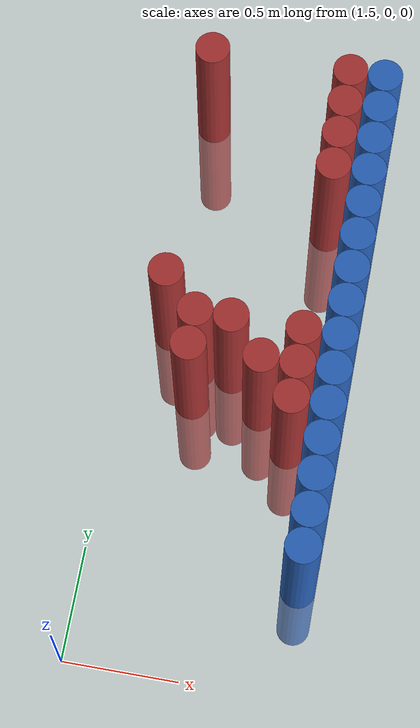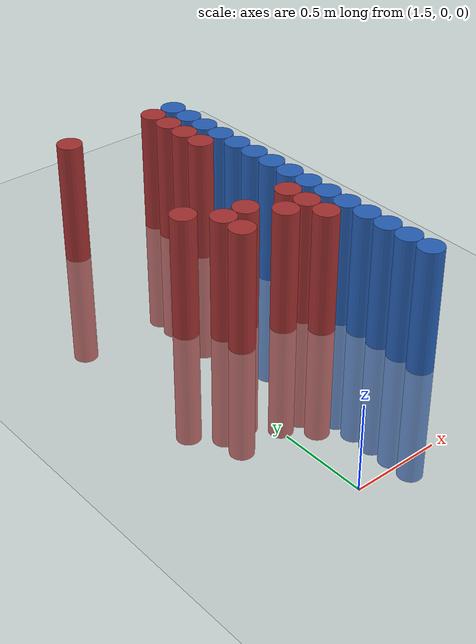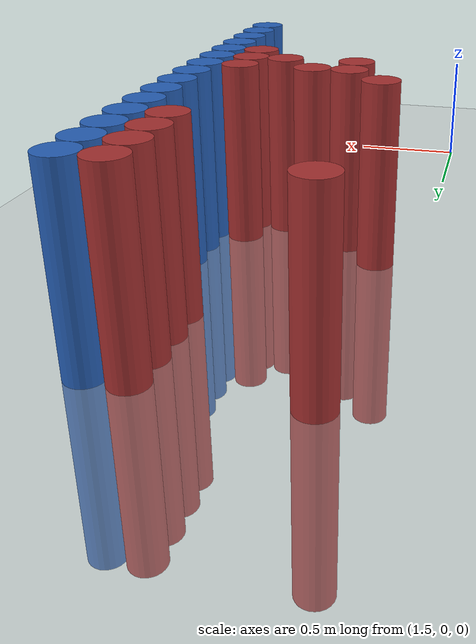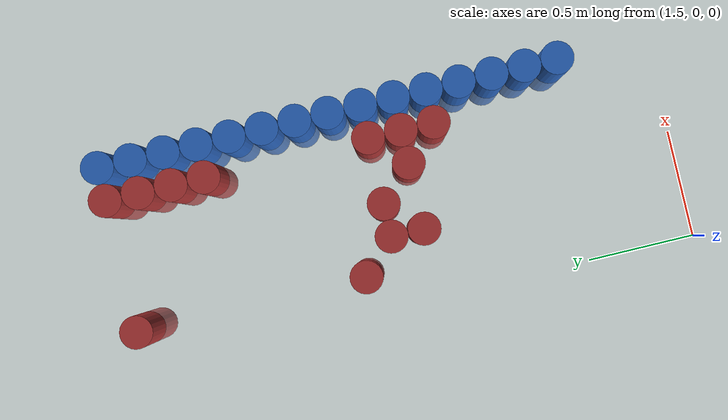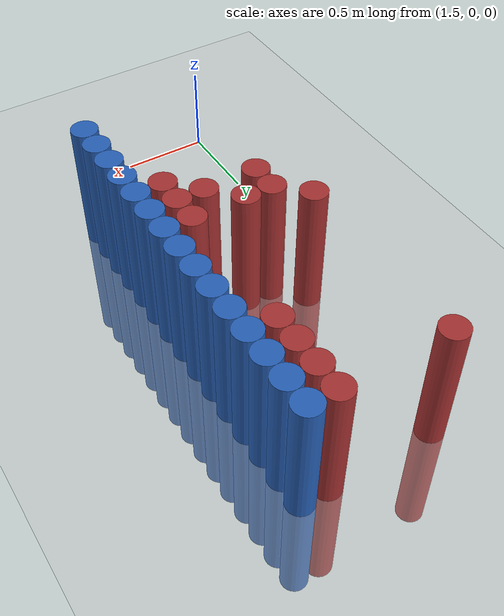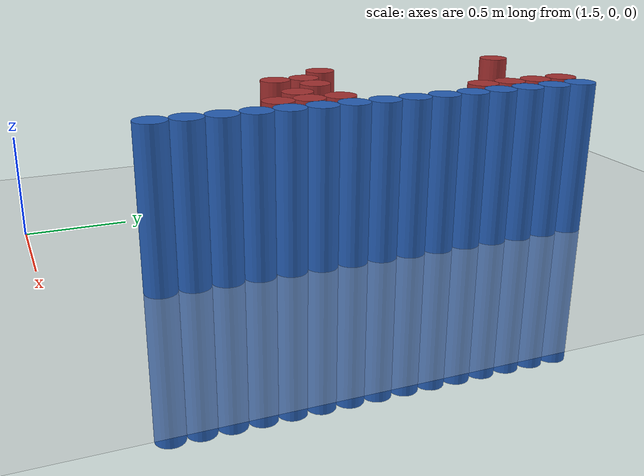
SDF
<sdf version="1.6">
 <world name="default">
  <model name="ground_plane">
   <static>1</static>
   <link name="link">
    <collision name="collision">
     <geometry><plane><normal>0 0 1</normal><size>100 100</size></plane></geometry>
     <surface><friction><ode><mu>100</mu><mu2>50</mu2></ode></friction></surface>
    </collision>
    <visual name="visual">
     <cast_shadows>0</cast_shadows>
     <geometry><plane><normal>0 0 1</normal><size>100 100</size></plane></geometry>
     <material>
      <script><uri>file://media/materials/scripts/gazebo.material</uri><name>Gazebo/Grey</name></script>
     </material>
    </visual>
   </link>
  </model>
  <model name="unit_cylinder_217">
   <static>1</static>
   <pose>1.675000 1.525000 0.000000 0.000000 0.000000 0.000000</pose>
   <link name="link">
    <inertial>
     <mass>1</mass>
     <inertia><ixx>0.145833</ixx><ixy>0</ixy><ixz>0</ixz><iyy>0.145833</iyy><iyz>0</iyz><izz>0.125</izz></inertia>
    </inertial>
    <collision name="collision">
     <geometry><cylinder><radius>0.075000</radius><length>1.5</length></cylinder></geometry>
    </collision>
    <visual name="visual">
     <geometry><cylinder><radius>0.075000</radius><length>1.5</length></cylinder></geometry>
     <material>
      <ambient>0.648000 0.192000 0.192000 1</ambient>
      <diffuse>0.648000 0.192000 0.192000 1</diffuse>
     </material>
     <material>
      <script><name>Gazebo/Grey</name><uri>file://media/materials/scripts/gazebo.material</uri></script>
     </material>
    </visual>
   </link>
  </model>
  <model name="unit_cylinder_218">
   <static>1</static>
   <pose>1.675000 2.575000 0.000000 0.000000 0.000000 0.000000</pose>
   <link name="link">
    <inertial>
     <mass>1</mass>
     <inertia><ixx>0.145833</ixx><ixy>0</ixy><ixz>0</ixz><iyy>0.145833</iyy><iyz>0</iyz><izz>0.125</izz></inertia>
    </inertial>
    <collision name="collision">
     <geometry><cylinder><radius>0.075000</radius><length>1.5</length></cylinder></geometry>
    </collision>
    <visual name="visual">
     <geometry><cylinder><radius>0.075000</radius><length>1.5</length></cylinder></geometry>
     <material>
      <ambient>0.648000 0.192000 0.192000 1</ambient>
      <diffuse>0.648000 0.192000 0.192000 1</diffuse>
     </material>
     <material>
      <script><name>Gazebo/Grey</name><uri>file://media/materials/scripts/gazebo.material</uri></script>
     </material>
    </visual>
   </link>
  </model>
  <model name="unit_cylinder_219">
   <static>1</static>
   <pose>1.825000 1.225000 0.000000 0.000000 0.000000 0.000000</pose>
   <link name="link">
    <inertial>
     <mass>1</mass>
     <inertia><ixx>0.145833</ixx><ixy>0</ixy><ixz>0</ixz><iyy>0.145833</iyy><iyz>0</iyz><izz>0.125</izz></inertia>
    </inertial>
    <collision name="collision">
     <geometry><cylinder><radius>0.075000</radius><length>1.5</length></cylinder></geometry>
    </collision>
    <visual name="visual">
     <geometry><cylinder><radius>0.075000</radius><length>1.5</length></cylinder></geometry>
     <material>
      <ambient>0.648000 0.192000 0.192000 1</ambient>
      <diffuse>0.648000 0.192000 0.192000 1</diffuse>
     </material>
     <material>
      <script><name>Gazebo/Grey</name><uri>file://media/materials/scripts/gazebo.material</uri></script>
     </material>
    </visual>
   </link>
  </model>
  <model name="unit_cylinder_220">
   <static>1</static>
   <pose>1.825000 1.375000 0.000000 0.000000 0.000000 0.000000</pose>
   <link name="link">
    <inertial>
     <mass>1</mass>
     <inertia><ixx>0.145833</ixx><ixy>0</ixy><ixz>0</ixz><iyy>0.145833</iyy><iyz>0</iyz><izz>0.125</izz></inertia>
    </inertial>
    <collision name="collision">
     <geometry><cylinder><radius>0.075000</radius><length>1.5</length></cylinder></geometry>
    </collision>
    <visual name="visual">
     <geometry><cylinder><radius>0.075000</radius><length>1.5</length></cylinder></geometry>
     <material>
      <ambient>0.648000 0.192000 0.192000 1</ambient>
      <diffuse>0.648000 0.192000 0.192000 1</diffuse>
     </material>
     <material>
      <script><name>Gazebo/Grey</name><uri>file://media/materials/scripts/gazebo.material</uri></script>
     </material>
    </visual>
   </link>
  </model>
  <model name="unit_cylinder_221">
   <static>1</static>
   <pose>1.975000 1.375000 0.000000 0.000000 0.000000 0.000000</pose>
   <link name="link">
    <inertial>
     <mass>1</mass>
     <inertia><ixx>0.145833</ixx><ixy>0</ixy><ixz>0</ixz><iyy>0.145833</iyy><iyz>0</iyz><izz>0.125</izz></inertia>
    </inertial>
    <collision name="collision">
     <geometry><cylinder><radius>0.075000</radius><length>1.5</length></cylinder></geometry>
    </collision>
    <visual name="visual">
     <geometry><cylinder><radius>0.075000</radius><length>1.5</length></cylinder></geometry>
     <material>
      <ambient>0.648000 0.192000 0.192000 1</ambient>
      <diffuse>0.648000 0.192000 0.192000 1</diffuse>
     </material>
     <material>
      <script><name>Gazebo/Grey</name><uri>file://media/materials/scripts/gazebo.material</uri></script>
     </material>
    </visual>
   </link>
  </model>
  <model name="unit_cylinder_224">
   <static>1</static>
   <pose>2.125000 1.225000 0.000000 0.000000 0.000000 0.000000</pose>
   <link name="link">
    <inertial>
     <mass>1</mass>
     <inertia><ixx>0.145833</ixx><ixy>0</ixy><ixz>0</ixz><iyy>0.145833</iyy><iyz>0</iyz><izz>0.125</izz></inertia>
    </inertial>
    <collision name="collision">
     <geometry><cylinder><radius>0.075000</radius><length>1.5</length></cylinder></geometry>
    </collision>
    <visual name="visual">
     <geometry><cylinder><radius>0.075000</radius><length>1.5</length></cylinder></geometry>
     <material>
      <ambient>0.648000 0.192000 0.192000 1</ambient>
      <diffuse>0.648000 0.192000 0.192000 1</diffuse>
     </material>
     <material>
      <script><name>Gazebo/Grey</name><uri>file://media/materials/scripts/gazebo.material</uri></script>
     </material>
    </visual>
   </link>
  </model>
  <model name="unit_cylinder_228">
   <static>1</static>
   <pose>2.275000 1.075000 0.000000 0.000000 0.000000 0.000000</pose>
   <link name="link">
    <inertial>
     <mass>1</mass>
     <inertia><ixx>0.145833</ixx><ixy>0</ixy><ixz>0</ixz><iyy>0.145833</iyy><iyz>0</iyz><izz>0.125</izz></inertia>
    </inertial>
    <collision name="collision">
     <geometry><cylinder><radius>0.075000</radius><length>1.5</length></cylinder></geometry>
    </collision>
    <visual name="visual">
     <geometry><cylinder><radius>0.075000</radius><length>1.5</length></cylinder></geometry>
     <material>
      <ambient>0.648000 0.192000 0.192000 1</ambient>
      <diffuse>0.648000 0.192000 0.192000 1</diffuse>
     </material>
     <material>
      <script><name>Gazebo/Grey</name><uri>file://media/materials/scripts/gazebo.material</uri></script>
     </material>
    </visual>
   </link>
  </model>
  <model name="unit_cylinder_229">
   <static>1</static>
   <pose>2.275000 1.225000 0.000000 0.000000 0.000000 0.000000</pose>
   <link name="link">
    <inertial>
     <mass>1</mass>
     <inertia><ixx>0.145833</ixx><ixy>0</ixy><ixz>0</ixz><iyy>0.145833</iyy><iyz>0</iyz><izz>0.125</izz></inertia>
    </inertial>
    <collision name="collision">
     <geometry><cylinder><radius>0.075000</radius><length>1.5</length></cylinder></geometry>
    </collision>
    <visual name="visual">
     <geometry><cylinder><radius>0.075000</radius><length>1.5</length></cylinder></geometry>
     <material>
      <ambient>0.648000 0.192000 0.192000 1</ambient>
      <diffuse>0.648000 0.192000 0.192000 1</diffuse>
     </material>
     <material>
      <script><name>Gazebo/Grey</name><uri>file://media/materials/scripts/gazebo.material</uri></script>
     </material>
    </visual>
   </link>
  </model>
  <model name="unit_cylinder_230">
   <static>1</static>
   <pose>2.275000 1.375000 0.000000 0.000000 0.000000 0.000000</pose>
   <link name="link">
    <inertial>
     <mass>1</mass>
     <inertia><ixx>0.145833</ixx><ixy>0</ixy><ixz>0</ixz><iyy>0.145833</iyy><iyz>0</iyz><izz>0.125</izz></inertia>
    </inertial>
    <collision name="collision">
     <geometry><cylinder><radius>0.075000</radius><length>1.5</length></cylinder></geometry>
    </collision>
    <visual name="visual">
     <geometry><cylinder><radius>0.075000</radius><length>1.5</length></cylinder></geometry>
     <material>
      <ambient>0.648000 0.192000 0.192000 1</ambient>
      <diffuse>0.648000 0.192000 0.192000 1</diffuse>
     </material>
     <material>
      <script><name>Gazebo/Grey</name><uri>file://media/materials/scripts/gazebo.material</uri></script>
     </material>
    </visual>
   </link>
  </model>
  <model name="unit_cylinder_231">
   <static>1</static>
   <pose>2.275000 2.125000 0.000000 0.000000 0.000000 0.000000</pose>
   <link name="link">
    <inertial>
     <mass>1</mass>
     <inertia><ixx>0.145833</ixx><ixy>0</ixy><ixz>0</ixz><iyy>0.145833</iyy><iyz>0</iyz><izz>0.125</izz></inertia>
    </inertial>
    <collision name="collision">
     <geometry><cylinder><radius>0.075000</radius><length>1.5</length></cylinder></geometry>
    </collision>
    <visual name="visual">
     <geometry><cylinder><radius>0.075000</radius><length>1.5</length></cylinder></geometry>
     <material>
      <ambient>0.648000 0.192000 0.192000 1</ambient>
      <diffuse>0.648000 0.192000 0.192000 1</diffuse>
     </material>
     <material>
      <script><name>Gazebo/Grey</name><uri>file://media/materials/scripts/gazebo.material</uri></script>
     </material>
    </visual>
   </link>
  </model>
  <model name="unit_cylinder_232">
   <static>1</static>
   <pose>2.275000 2.275000 0.000000 0.000000 0.000000 0.000000</pose>
   <link name="link">
    <inertial>
     <mass>1</mass>
     <inertia><ixx>0.145833</ixx><ixy>0</ixy><ixz>0</ixz><iyy>0.145833</iyy><iyz>0</iyz><izz>0.125</izz></inertia>
    </inertial>
    <collision name="collision">
     <geometry><cylinder><radius>0.075000</radius><length>1.5</length></cylinder></geometry>
    </collision>
    <visual name="visual">
     <geometry><cylinder><radius>0.075000</radius><length>1.5</length></cylinder></geometry>
     <material>
      <ambient>0.648000 0.192000 0.192000 1</ambient>
      <diffuse>0.648000 0.192000 0.192000 1</diffuse>
     </material>
     <material>
      <script><name>Gazebo/Grey</name><uri>file://media/materials/scripts/gazebo.material</uri></script>
     </material>
    </visual>
   </link>
  </model>
  <model name="unit_cylinder_233">
   <static>1</static>
   <pose>2.275000 2.425000 0.000000 0.000000 0.000000 0.000000</pose>
   <link name="link">
    <inertial>
     <mass>1</mass>
     <inertia><ixx>0.145833</ixx><ixy>0</ixy><ixz>0</ixz><iyy>0.145833</iyy><iyz>0</iyz><izz>0.125</izz></inertia>
    </inertial>
    <collision name="collision">
     <geometry><cylinder><radius>0.075000</radius><length>1.5</length></cylinder></geometry>
    </collision>
    <visual name="visual">
     <geometry><cylinder><radius>0.075000</radius><length>1.5</length></cylinder></geometry>
     <material>
      <ambient>0.648000 0.192000 0.192000 1</ambient>
      <diffuse>0.648000 0.192000 0.192000 1</diffuse>
     </material>
     <material>
      <script><name>Gazebo/Grey</name><uri>file://media/materials/scripts/gazebo.material</uri></script>
     </material>
    </visual>
   </link>
  </model>
  <model name="unit_cylinder_234">
   <static>1</static>
   <pose>2.275000 2.575000 0.000000 0.000000 0.000000 0.000000</pose>
   <link name="link">
    <inertial>
     <mass>1</mass>
     <inertia><ixx>0.145833</ixx><ixy>0</ixy><ixz>0</ixz><iyy>0.145833</iyy><iyz>0</iyz><izz>0.125</izz></inertia>
    </inertial>
    <collision name="collision">
     <geometry><cylinder><radius>0.075000</radius><length>1.5</length></cylinder></geometry>
    </collision>
    <visual name="visual">
     <geometry><cylinder><radius>0.075000</radius><length>1.5</length></cylinder></geometry>
     <material>
      <ambient>0.648000 0.192000 0.192000 1</ambient>
      <diffuse>0.648000 0.192000 0.192000 1</diffuse>
     </material>
     <material>
      <script><name>Gazebo/Grey</name><uri>file://media/materials/scripts/gazebo.material</uri></script>
     </material>
    </visual>
   </link>
  </model>
  <model name="unit_cylinder_244">
   <static>1</static>
   <pose>2.425000 0.475000 0.000000 0.000000 0.000000 0.000000</pose>
   <link name="link">
    <inertial>
     <mass>1</mass>
     <inertia><ixx>0.145833</ixx><ixy>0</ixy><ixz>0</ixz><iyy>0.145833</iyy><iyz>0</iyz><izz>0.125</izz></inertia>
    </inertial>
    <collision name="collision">
     <geometry><cylinder><radius>0.075000</radius><length>1.5</length></cylinder></geometry>
    </collision>
    <visual name="visual">
     <geometry><cylinder><radius>0.075000</radius><length>1.5</length></cylinder></geometry>
     <material>
      <ambient>0.152000 0.379000 0.720000 1</ambient>
      <diffuse>0.152000 0.379000 0.720000 1</diffuse>
     </material>
     <material>
      <script><name>Gazebo/Grey</name><uri>file://media/materials/scripts/gazebo.material</uri></script>
     </material>
    </visual>
   </link>
  </model>
  <model name="unit_cylinder_245">
   <static>1</static>
   <pose>2.425000 0.625000 0.000000 0.000000 0.000000 0.000000</pose>
   <link name="link">
    <inertial>
     <mass>1</mass>
     <inertia><ixx>0.145833</ixx><ixy>0</ixy><ixz>0</ixz><iyy>0.145833</iyy><iyz>0</iyz><izz>0.125</izz></inertia>
    </inertial>
    <collision name="collision">
     <geometry><cylinder><radius>0.075000</radius><length>1.5</length></cylinder></geometry>
    </collision>
    <visual name="visual">
     <geometry><cylinder><radius>0.075000</radius><length>1.5</length></cylinder></geometry>
     <material>
      <ambient>0.152000 0.379000 0.720000 1</ambient>
      <diffuse>0.152000 0.379000 0.720000 1</diffuse>
     </material>
     <material>
      <script><name>Gazebo/Grey</name><uri>file://media/materials/scripts/gazebo.material</uri></script>
     </material>
    </visual>
   </link>
  </model>
  <model name="unit_cylinder_246">
   <static>1</static>
   <pose>2.425000 0.775000 0.000000 0.000000 0.000000 0.000000</pose>
   <link name="link">
    <inertial>
     <mass>1</mass>
     <inertia><ixx>0.145833</ixx><ixy>0</ixy><ixz>0</ixz><iyy>0.145833</iyy><iyz>0</iyz><izz>0.125</izz></inertia>
    </inertial>
    <collision name="collision">
     <geometry><cylinder><radius>0.075000</radius><length>1.5</length></cylinder></geometry>
    </collision>
    <visual name="visual">
     <geometry><cylinder><radius>0.075000</radius><length>1.5</length></cylinder></geometry>
     <material>
      <ambient>0.152000 0.379000 0.720000 1</ambient>
      <diffuse>0.152000 0.379000 0.720000 1</diffuse>
     </material>
     <material>
      <script><name>Gazebo/Grey</name><uri>file://media/materials/scripts/gazebo.material</uri></script>
     </material>
    </visual>
   </link>
  </model>
  <model name="unit_cylinder_247">
   <static>1</static>
   <pose>2.425000 0.925000 0.000000 0.000000 0.000000 0.000000</pose>
   <link name="link">
    <inertial>
     <mass>1</mass>
     <inertia><ixx>0.145833</ixx><ixy>0</ixy><ixz>0</ixz><iyy>0.145833</iyy><iyz>0</iyz><izz>0.125</izz></inertia>
    </inertial>
    <collision name="collision">
     <geometry><cylinder><radius>0.075000</radius><length>1.5</length></cylinder></geometry>
    </collision>
    <visual name="visual">
     <geometry><cylinder><radius>0.075000</radius><length>1.5</length></cylinder></geometry>
     <material>
      <ambient>0.152000 0.379000 0.720000 1</ambient>
      <diffuse>0.152000 0.379000 0.720000 1</diffuse>
     </material>
     <material>
      <script><name>Gazebo/Grey</name><uri>file://media/materials/scripts/gazebo.material</uri></script>
     </material>
    </visual>
   </link>
  </model>
  <model name="unit_cylinder_248">
   <static>1</static>
   <pose>2.425000 1.075000 0.000000 0.000000 0.000000 0.000000</pose>
   <link name="link">
    <inertial>
     <mass>1</mass>
     <inertia><ixx>0.145833</ixx><ixy>0</ixy><ixz>0</ixz><iyy>0.145833</iyy><iyz>0</iyz><izz>0.125</izz></inertia>
    </inertial>
    <collision name="collision">
     <geometry><cylinder><radius>0.075000</radius><length>1.5</length></cylinder></geometry>
    </collision>
    <visual name="visual">
     <geometry><cylinder><radius>0.075000</radius><length>1.5</length></cylinder></geometry>
     <material>
      <ambient>0.152000 0.379000 0.720000 1</ambient>
      <diffuse>0.152000 0.379000 0.720000 1</diffuse>
     </material>
     <material>
      <script><name>Gazebo/Grey</name><uri>file://media/materials/scripts/gazebo.material</uri></script>
     </material>
    </visual>
   </link>
  </model>
  <model name="unit_cylinder_249">
   <static>1</static>
   <pose>2.425000 1.225000 0.000000 0.000000 0.000000 0.000000</pose>
   <link name="link">
    <inertial>
     <mass>1</mass>
     <inertia><ixx>0.145833</ixx><ixy>0</ixy><ixz>0</ixz><iyy>0.145833</iyy><iyz>0</iyz><izz>0.125</izz></inertia>
    </inertial>
    <collision name="collision">
     <geometry><cylinder><radius>0.075000</radius><length>1.5</length></cylinder></geometry>
    </collision>
    <visual name="visual">
     <geometry><cylinder><radius>0.075000</radius><length>1.5</length></cylinder></geometry>
     <material>
      <ambient>0.152000 0.379000 0.720000 1</ambient>
      <diffuse>0.152000 0.379000 0.720000 1</diffuse>
     </material>
     <material>
      <script><name>Gazebo/Grey</name><uri>file://media/materials/scripts/gazebo.material</uri></script>
     </material>
    </visual>
   </link>
  </model>
  <model name="unit_cylinder_250">
   <static>1</static>
   <pose>2.425000 1.375000 0.000000 0.000000 0.000000 0.000000</pose>
   <link name="link">
    <inertial>
     <mass>1</mass>
     <inertia><ixx>0.145833</ixx><ixy>0</ixy><ixz>0</ixz><iyy>0.145833</iyy><iyz>0</iyz><izz>0.125</izz></inertia>
    </inertial>
    <collision name="collision">
     <geometry><cylinder><radius>0.075000</radius><length>1.5</length></cylinder></geometry>
    </collision>
    <visual name="visual">
     <geometry><cylinder><radius>0.075000</radius><length>1.5</length></cylinder></geometry>
     <material>
      <ambient>0.152000 0.379000 0.720000 1</ambient>
      <diffuse>0.152000 0.379000 0.720000 1</diffuse>
     </material>
     <material>
      <script><name>Gazebo/Grey</name><uri>file://media/materials/scripts/gazebo.material</uri></script>
     </material>
    </visual>
   </link>
  </model>
  <model name="unit_cylinder_251">
   <static>1</static>
   <pose>2.425000 1.525000 0.000000 0.000000 0.000000 0.000000</pose>
   <link name="link">
    <inertial>
     <mass>1</mass>
     <inertia><ixx>0.145833</ixx><ixy>0</ixy><ixz>0</ixz><iyy>0.145833</iyy><iyz>0</iyz><izz>0.125</izz></inertia>
    </inertial>
    <collision name="collision">
     <geometry><cylinder><radius>0.075000</radius><length>1.5</length></cylinder></geometry>
    </collision>
    <visual name="visual">
     <geometry><cylinder><radius>0.075000</radius><length>1.5</length></cylinder></geometry>
     <material>
      <ambient>0.152000 0.379000 0.720000 1</ambient>
      <diffuse>0.152000 0.379000 0.720000 1</diffuse>
     </material>
     <material>
      <script><name>Gazebo/Grey</name><uri>file://media/materials/scripts/gazebo.material</uri></script>
     </material>
    </visual>
   </link>
  </model>
  <model name="unit_cylinder_252">
   <static>1</static>
   <pose>2.425000 1.675000 0.000000 0.000000 0.000000 0.000000</pose>
   <link name="link">
    <inertial>
     <mass>1</mass>
     <inertia><ixx>0.145833</ixx><ixy>0</ixy><ixz>0</ixz><iyy>0.145833</iyy><iyz>0</iyz><izz>0.125</izz></inertia>
    </inertial>
    <collision name="collision">
     <geometry><cylinder><radius>0.075000</radius><length>1.5</length></cylinder></geometry>
    </collision>
    <visual name="visual">
     <geometry><cylinder><radius>0.075000</radius><length>1.5</length></cylinder></geometry>
     <material>
      <ambient>0.152000 0.379000 0.720000 1</ambient>
      <diffuse>0.152000 0.379000 0.720000 1</diffuse>
     </material>
     <material>
      <script><name>Gazebo/Grey</name><uri>file://media/materials/scripts/gazebo.material</uri></script>
     </material>
    </visual>
   </link>
  </model>
  <model name="unit_cylinder_253">
   <static>1</static>
   <pose>2.425000 1.825000 0.000000 0.000000 0.000000 0.000000</pose>
   <link name="link">
    <inertial>
     <mass>1</mass>
     <inertia><ixx>0.145833</ixx><ixy>0</ixy><ixz>0</ixz><iyy>0.145833</iyy><iyz>0</iyz><izz>0.125</izz></inertia>
    </inertial>
    <collision name="collision">
     <geometry><cylinder><radius>0.075000</radius><length>1.5</length></cylinder></geometry>
    </collision>
    <visual name="visual">
     <geometry><cylinder><radius>0.075000</radius><length>1.5</length></cylinder></geometry>
     <material>
      <ambient>0.152000 0.379000 0.720000 1</ambient>
      <diffuse>0.152000 0.379000 0.720000 1</diffuse>
     </material>
     <material>
      <script><name>Gazebo/Grey</name><uri>file://media/materials/scripts/gazebo.material</uri></script>
     </material>
    </visual>
   </link>
  </model>
  <model name="unit_cylinder_254">
   <static>1</static>
   <pose>2.425000 1.975000 0.000000 0.000000 0.000000 0.000000</pose>
   <link name="link">
    <inertial>
     <mass>1</mass>
     <inertia><ixx>0.145833</ixx><ixy>0</ixy><ixz>0</ixz><iyy>0.145833</iyy><iyz>0</iyz><izz>0.125</izz></inertia>
    </inertial>
    <collision name="collision">
     <geometry><cylinder><radius>0.075000</radius><length>1.5</length></cylinder></geometry>
    </collision>
    <visual name="visual">
     <geometry><cylinder><radius>0.075000</radius><length>1.5</length></cylinder></geometry>
     <material>
      <ambient>0.152000 0.379000 0.720000 1</ambient>
      <diffuse>0.152000 0.379000 0.720000 1</diffuse>
     </material>
     <material>
      <script><name>Gazebo/Grey</name><uri>file://media/materials/scripts/gazebo.material</uri></script>
     </material>
    </visual>
   </link>
  </model>
  <model name="unit_cylinder_255">
   <static>1</static>
   <pose>2.425000 2.125000 0.000000 0.000000 0.000000 0.000000</pose>
   <link name="link">
    <inertial>
     <mass>1</mass>
     <inertia><ixx>0.145833</ixx><ixy>0</ixy><ixz>0</ixz><iyy>0.145833</iyy><iyz>0</iyz><izz>0.125</izz></inertia>
    </inertial>
    <collision name="collision">
     <geometry><cylinder><radius>0.075000</radius><length>1.5</length></cylinder></geometry>
    </collision>
    <visual name="visual">
     <geometry><cylinder><radius>0.075000</radius><length>1.5</length></cylinder></geometry>
     <material>
      <ambient>0.152000 0.379000 0.720000 1</ambient>
      <diffuse>0.152000 0.379000 0.720000 1</diffuse>
     </material>
     <material>
      <script><name>Gazebo/Grey</name><uri>file://media/materials/scripts/gazebo.material</uri></script>
     </material>
    </visual>
   </link>
  </model>
  <model name="unit_cylinder_256">
   <static>1</static>
   <pose>2.425000 2.275000 0.000000 0.000000 0.000000 0.000000</pose>
   <link name="link">
    <inertial>
     <mass>1</mass>
     <inertia><ixx>0.145833</ixx><ixy>0</ixy><ixz>0</ixz><iyy>0.145833</iyy><iyz>0</iyz><izz>0.125</izz></inertia>
    </inertial>
    <collision name="collision">
     <geometry><cylinder><radius>0.075000</radius><length>1.5</length></cylinder></geometry>
    </collision>
    <visual name="visual">
     <geometry><cylinder><radius>0.075000</radius><length>1.5</length></cylinder></geometry>
     <material>
      <ambient>0.152000 0.379000 0.720000 1</ambient>
      <diffuse>0.152000 0.379000 0.720000 1</diffuse>
     </material>
     <material>
      <script><name>Gazebo/Grey</name><uri>file://media/materials/scripts/gazebo.material</uri></script>
     </material>
    </visual>
   </link>
  </model>
  <model name="unit_cylinder_257">
   <static>1</static>
   <pose>2.425000 2.425000 0.000000 0.000000 0.000000 0.000000</pose>
   <link name="link">
    <inertial>
     <mass>1</mass>
     <inertia><ixx>0.145833</ixx><ixy>0</ixy><ixz>0</ixz><iyy>0.145833</iyy><iyz>0</iyz><izz>0.125</izz></inertia>
    </inertial>
    <collision name="collision">
     <geometry><cylinder><radius>0.075000</radius><length>1.5</length></cylinder></geometry>
    </collision>
    <visual name="visual">
     <geometry><cylinder><radius>0.075000</radius><length>1.5</length></cylinder></geometry>
     <material>
      <ambient>0.152000 0.379000 0.720000 1</ambient>
      <diffuse>0.152000 0.379000 0.720000 1</diffuse>
     </material>
     <material>
      <script><name>Gazebo/Grey</name><uri>file://media/materials/scripts/gazebo.material</uri></script>
     </material>
    </visual>
   </link>
  </model>
  <model name="unit_cylinder_258">
   <static>1</static>
   <pose>2.425000 2.575000 0.000000 0.000000 0.000000 0.000000</pose>
   <link name="link">
    <inertial>
     <mass>1</mass>
     <inertia><ixx>0.145833</ixx><ixy>0</ixy><ixz>0</ixz><iyy>0.145833</iyy><iyz>0</iyz><izz>0.125</izz></inertia>
    </inertial>
    <collision name="collision">
     <geometry><cylinder><radius>0.075000</radius><length>1.5</length></cylinder></geometry>
    </collision>
    <visual name="visual">
     <geometry><cylinder><radius>0.075000</radius><length>1.5</length></cylinder></geometry>
     <material>
      <ambient>0.152000 0.379000 0.720000 1</ambient>
      <diffuse>0.152000 0.379000 0.720000 1</diffuse>
     </material>
     <material>
      <script><name>Gazebo/Grey</name><uri>file://media/materials/scripts/gazebo.material</uri></script>
     </material>
    </visual>
   </link>
  </model>
 </world>
</sdf>
